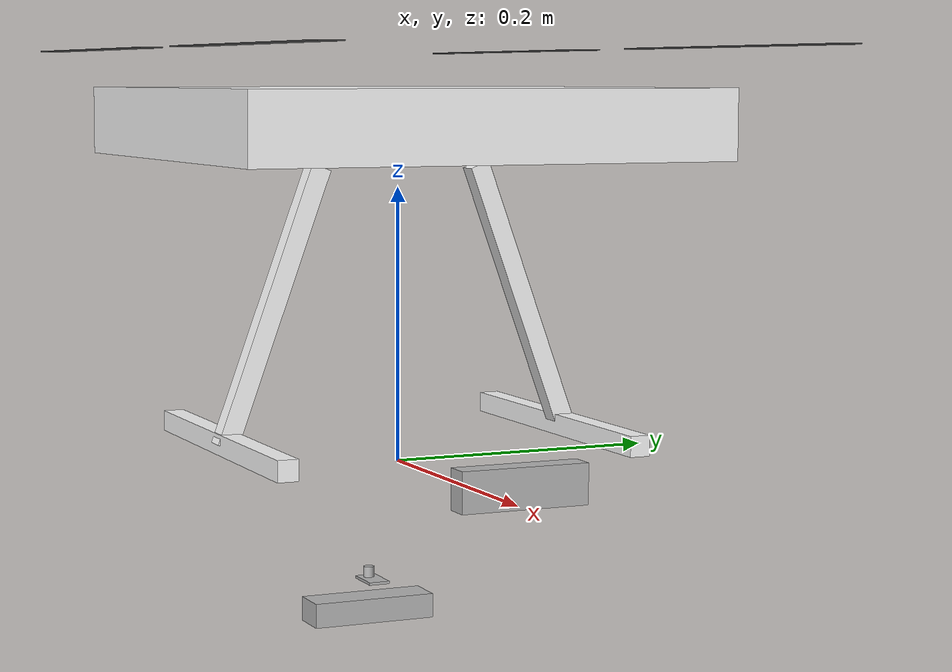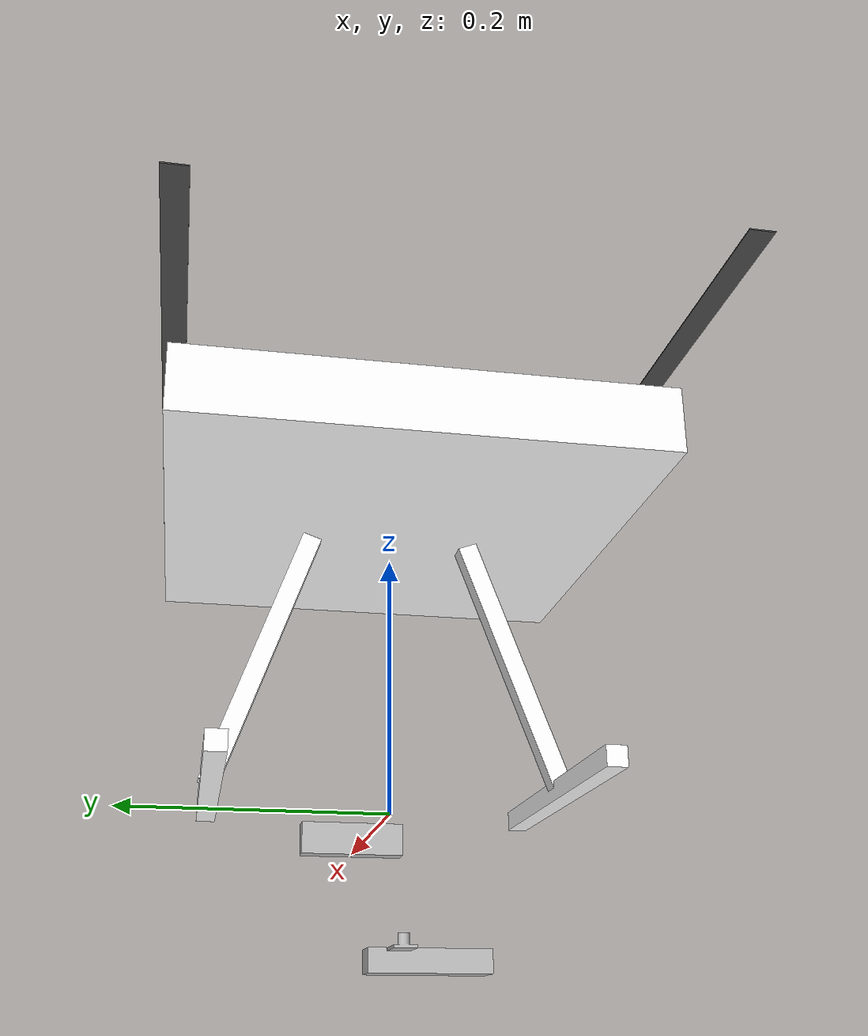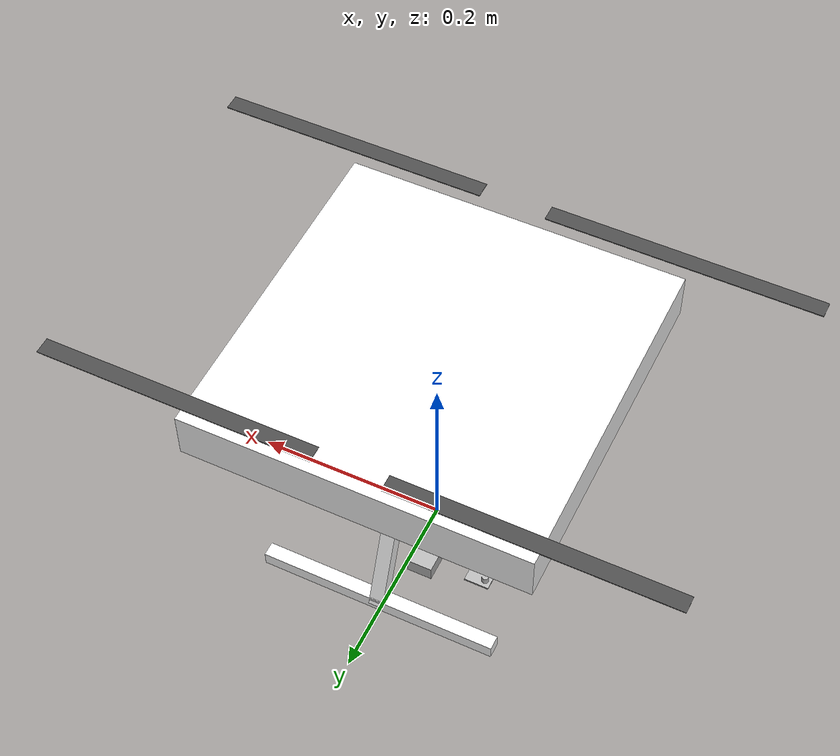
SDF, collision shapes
<?xml version="1.0" encoding="UTF-8"?>

<sdf version="1.9">

  <model name="x500_flow">

    <self_collide>false</self_collide>

    <!-- =====================================================
         FLIGHT-TESTED X500 BASE
         ===================================================== -->

    <include merge="true">
      <uri>model://x500_flow_base</uri>
    </include>

    <!-- =====================================================
         OPTICAL FLOW
         ===================================================== -->

    <include merge="true">
      <uri>model://optical_flow</uri>

      <pose relative_to="base_link">
        0.05 0 -0.1 0 0 0
      </pose>
    </include>

    <joint name="optical_flow_joint" type="fixed">

      <parent>base_link</parent>
      <child>flow_link</child>

      <pose relative_to="base_link">
        0.05 0 -0.1 0 0 0
      </pose>

    </joint>

    <!-- =====================================================
         FRONT REALSENSE D435i
         ===================================================== -->

    <include merge="true">
      <uri>model://Realsense_d435i_front</uri>

      <pose relative_to="base_link">
        0.2 0.03 0 0 0 0
      </pose>
    </include>

    <joint name="realsense_front_joint" type="fixed">

      <parent>base_link</parent>
      <child>realsense_front_link</child>

      <pose relative_to="base_link">
        0.1 0.03 0.3 0 0 0
      </pose>

    </joint>

    <!-- =====================================================
         BOTTOM REALSENSE D435i
         ===================================================== -->

    <include merge="true">
      <uri>model://Realsense_d435i_down</uri>

      <pose relative_to="base_link">
        0 0 -0.1 0 1.57 0
      </pose>
    </include>

    <joint name="realsense_down_joint" type="fixed">

      <parent>base_link</parent>
      <child>realsense_down_link</child>

      <pose relative_to="base_link">
        0 0 -0.1 0 1.57 0
      </pose>

    </joint>

    <!-- =====================================================
         MLX90614 THERMAL SENSOR
         ===================================================== -->

    <include merge="true">
      <uri>model://MLX90614</uri>

      <pose relative_to="base_link">
        -0.05 0 -0.1 0 0 0
      </pose>
    </include>

    <joint name="mlx90614_joint" type="fixed">

      <parent>base_link</parent>
      <child>MLX90614_link</child>

      <pose relative_to="base_link">
        -0.05 0 -0.1 0 1.57 0
      </pose>

    </joint>

  </model>

</sdf>

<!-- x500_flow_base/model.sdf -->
<sdf version='1.9'>
  <model name='x500_flow_base'>
    <include merge='true'>
      <uri>model://x500_base</uri>
    </include>
    <plugin filename="gz-sim-multicopter-motor-model-system"
      name="gz::sim::systems::MulticopterMotorModel">
      <jointName>rotor_0_joint</jointName>
      <linkName>rotor_0</linkName>
      <robotNamespace>x500_flow</robotNamespace>
      <turningDirection>ccw</turningDirection>
      <timeConstantUp>0.0125</timeConstantUp>
      <timeConstantDown>0.025</timeConstantDown>
      <maxRotVelocity>1000.0</maxRotVelocity>
      <motorConstant>8.54858e-06</motorConstant>
      <momentConstant>0.016</momentConstant>
      <commandSubTopic>command/motor_speed</commandSubTopic>
      <actuator_number>0</actuator_number>
      <rotorDragCoefficient>8.06428e-05</rotorDragCoefficient>
      <rollingMomentCoefficient>1e-06</rollingMomentCoefficient>
      <rotorVelocitySlowdownSim>10</rotorVelocitySlowdownSim>
      <motorType>velocity</motorType>
    </plugin>
    <plugin filename="gz-sim-multicopter-motor-model-system"
      name="gz::sim::systems::MulticopterMotorModel">
      <jointName>rotor_1_joint</jointName>
      <linkName>rotor_1</linkName>
      <robotNamespace>x500_flow</robotNamespace>
      <turningDirection>ccw</turningDirection>
      <timeConstantUp>0.0125</timeConstantUp>
      <timeConstantDown>0.025</timeConstantDown>
      <maxRotVelocity>1000.0</maxRotVelocity>
      <motorConstant>8.54858e-06</motorConstant>
      <momentConstant>0.016</momentConstant>
      <commandSubTopic>command/motor_speed</commandSubTopic>
      <actuator_number>1</actuator_number>
      <rotorDragCoefficient>8.06428e-05</rotorDragCoefficient>
      <rollingMomentCoefficient>1e-06</rollingMomentCoefficient>
      <rotorVelocitySlowdownSim>10</rotorVelocitySlowdownSim>
      <motorType>velocity</motorType>
    </plugin>
    <plugin filename="gz-sim-multicopter-motor-model-system"
      name="gz::sim::systems::MulticopterMotorModel">
      <jointName>rotor_2_joint</jointName>
      <linkName>rotor_2</linkName>
      <robotNamespace>x500_flow</robotNamespace>
      <turningDirection>cw</turningDirection>
      <timeConstantUp>0.0125</timeConstantUp>
      <timeConstantDown>0.025</timeConstantDown>
      <maxRotVelocity>1000.0</maxRotVelocity>
      <motorConstant>8.54858e-06</motorConstant>
      <momentConstant>0.016</momentConstant>
      <commandSubTopic>command/motor_speed</commandSubTopic>
      <actuator_number>2</actuator_number>
      <rotorDragCoefficient>8.06428e-05</rotorDragCoefficient>
      <rollingMomentCoefficient>1e-06</rollingMomentCoefficient>
      <rotorVelocitySlowdownSim>10</rotorVelocitySlowdownSim>
      <motorType>velocity</motorType>
    </plugin>
    <plugin filename="gz-sim-multicopter-motor-model-system"
      name="gz::sim::systems::MulticopterMotorModel">
      <jointName>rotor_3_joint</jointName>
      <linkName>rotor_3</linkName>
      <robotNamespace>x500_flow</robotNamespace>
      <turningDirection>cw</turningDirection>
      <timeConstantUp>0.0125</timeConstantUp>
      <timeConstantDown>0.025</timeConstantDown>
      <maxRotVelocity>1000.0</maxRotVelocity>
      <motorConstant>8.54858e-06</motorConstant>
      <momentConstant>0.016</momentConstant>
      <commandSubTopic>command/motor_speed</commandSubTopic>
      <actuator_number>3</actuator_number>
      <rotorDragCoefficient>8.06428e-05</rotorDragCoefficient>
      <rollingMomentCoefficient>1e-06</rollingMomentCoefficient>
      <rotorVelocitySlowdownSim>10</rotorVelocitySlowdownSim>
      <motorType>velocity</motorType>
    </plugin>
  </model>
</sdf>

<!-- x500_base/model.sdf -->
<sdf version='1.9'>
  <model name='x500_base'>
    <pose>0 0 .24 0 0 0</pose>
    <self_collide>false</self_collide>
    <static>false</static>
    <link name="base_link">
      <inertial>
        <mass>2.0</mass>
        <inertia>
          <ixx>0.02166666666666667</ixx>
          <ixy>0</ixy>
          <ixz>0</ixz>
          <iyy>0.02166666666666667</iyy>
          <iyz>0</iyz>
          <izz>0.04000000000000001</izz>
        </inertia>
      </inertial>
      <gravity>true</gravity>
      <velocity_decay/>
      <visual name="base_link_visual">
        <pose>0 0 .025 0 0 3.141592654</pose>
        <geometry>
          <mesh>
            <scale>1 1 1</scale>
            <uri>model://x500_base/meshes/NXP-HGD-CF.dae</uri>
          </mesh>
        </geometry>
      </visual>
      <visual name="5010_motor_base_0">
        <pose>0.174 0.174 .032 0 0 -.45</pose>
        <geometry>
          <mesh>
            <scale>1 1 1</scale>
            <uri>model://x500_base/meshes/5010Base.dae</uri>
          </mesh>
        </geometry>
      </visual>
      <visual name="5010_motor_base_1">
        <pose>-0.174 0.174 .032 0 0 -.45</pose>
        <geometry>
          <mesh>
            <scale>1 1 1</scale>
            <uri>model://x500_base/meshes/5010Base.dae</uri>
          </mesh>
        </geometry>
      </visual>
      <visual name="5010_motor_base_2">
        <pose>0.174 -0.174 .032 0 0 -.45</pose>
        <geometry>
          <mesh>
            <scale>1 1 1</scale>
            <uri>model://x500_base/meshes/5010Base.dae</uri>
          </mesh>
        </geometry>
      </visual>
      <visual name="5010_motor_base_3">
        <pose>-0.174 -0.174 .032 0 0 -.45</pose>
        <geometry>
          <mesh>
            <scale>1 1 1</scale>
            <uri>model://x500_base/meshes/5010Base.dae</uri>
          </mesh>
        </geometry>
      </visual>
      <visual name="NXP_FMUK66_FRONT">
        <pose>0.047 .001 .043 1 0 1.57</pose>
        <cast_shadows>false</cast_shadows>
        <geometry>
          <plane>
            <normal>0 0 1</normal>
            <size>.013 .007</size>
          </plane>
        </geometry>
        <material>
          <diffuse>1.0 1.0 1.0</diffuse>
          <specular>1.0 1.0 1.0</specular>
          <pbr>
            <metal>
              <albedo_map>model://x500_base/materials/textures/nxp.png</albedo_map>
            </metal>
          </pbr>
        </material>
      </visual>
      <visual name="NXP_FMUK66_TOP">
        <pose>-0.023 0 .0515 0 0 -1.57</pose>
        <cast_shadows>false</cast_shadows>
        <geometry>
          <plane>
            <normal>0 0 1</normal>
            <size>.013 .007</size>
          </plane>
        </geometry>
        <material>
          <diffuse>1.0 1.0 1.0</diffuse>
          <specular>1.0 1.0 1.0</specular>
          <pbr>
            <metal>
              <albedo_map>model://x500_base/materials/textures/nxp.png</albedo_map>
            </metal>
          </pbr>
        </material>
      </visual>
      <visual name="RDDRONE_FMUK66_TOP">
        <pose>-.03 0 .0515 0 0 -1.57</pose>
        <cast_shadows>false</cast_shadows>
        <geometry>
          <plane>
            <normal>0 0 1</normal>
            <size>.032 .0034</size>
          </plane>
        </geometry>
        <material>
          <diffuse>1.0 1.0 1.0</diffuse>
          <specular>1.0 1.0 1.0</specular>
          <pbr>
            <metal>
              <albedo_map>model://x500_base/materials/textures/rd.png</albedo_map>
            </metal>
          </pbr>
        </material>
      </visual>
      <collision name="base_link_collision_0">
        <pose>0 0 .007 0 0 0</pose>
        <geometry>
          <box>
            <size>0.35355339059327373 0.35355339059327373 0.05</size>
          </box>
        </geometry>
        <surface>
          <contact>
            <ode>
              <min_depth>0.001</min_depth>
              <max_vel>0</max_vel>
            </ode>
          </contact>
          <friction>
            <ode/>
          </friction>
        </surface>
      </collision>
      <collision name="base_link_collision_1">
        <pose>0 -0.098 -.123 -0.35 0 0</pose>
        <geometry>
          <box>
            <size>0.015 0.015 0.21</size>
          </box>
        </geometry>
        <surface>
          <contact>
            <ode>
              <min_depth>0.001</min_depth>
              <max_vel>0</max_vel>
            </ode>
          </contact>
          <friction>
            <ode/>
          </friction>
        </surface>
      </collision>
      <collision name="base_link_collision_2">
        <pose>0 0.098 -.123 0.35 0 0</pose>
        <geometry>
          <box>
            <size>0.015 0.015 0.21</size>
          </box>
        </geometry>
        <surface>
          <contact>
            <ode>
              <min_depth>0.001</min_depth>
              <max_vel>0</max_vel>
            </ode>
          </contact>
          <friction>
            <ode/>
          </friction>
        </surface>
      </collision>
      <collision name="base_link_collision_3">
        <pose>0 -0.132 -.2195 0 0 0</pose>
        <geometry>
          <box>
            <size>0.25 0.015 0.015</size>
          </box>
        </geometry>
        <surface>
          <contact>
            <ode>
              <min_depth>0.001</min_depth>
              <max_vel>0</max_vel>
            </ode>
          </contact>
          <friction>
            <ode/>
          </friction>
        </surface>
      </collision>
      <collision name="base_link_collision_4">
        <pose>0 0.132 -.2195 0 0 0</pose>
        <geometry>
          <box>
            <size>0.25 0.015 0.015</size>
          </box>
        </geometry>
        <surface>
          <contact>
            <ode>
              <min_depth>0.001</min_depth>
              <max_vel>0</max_vel>
            </ode>
          </contact>
          <friction>
            <ode/>
          </friction>
        </surface>
      </collision>
      <sensor name="air_pressure_sensor" type="air_pressure">
        <always_on>1</always_on>
        <update_rate>50</update_rate>
        <air_pressure>
          <pressure>
            <noise type="gaussian">
              <mean>0</mean>
              <stddev>0.01</stddev>
            </noise>
          </pressure>
        </air_pressure>
      </sensor>
      <sensor name="magnetometer_sensor" type="magnetometer">
        <gz_frame_id>base_link</gz_frame_id>
        <always_on>1</always_on>
        <update_rate>100</update_rate>
        <magnetometer>
          <!-- TODO: update to fix units and coordinate system when we move past Harmonic -->
          <!-- See https://github.com/gazebosim/gz-sim/pull/2460 -->
          <!-- 3mgauss RMS: NOTE: noise is in tesla but sensor reports data in gauss -->
          <!-- Noise modeled after IIS2MDC -->
          <x>
            <noise type="gaussian">
              <stddev>0.0001</stddev>
            </noise>
          </x>
          <y>
            <noise type="gaussian">
              <stddev>0.0001</stddev>
            </noise>
          </y>
          <z>
            <noise type="gaussian">
              <stddev>0.0001</stddev>
            </noise>
          </z>
        </magnetometer>
      </sensor>
      <sensor name="imu_sensor" type="imu">
        <gz_frame_id>base_link</gz_frame_id>
        <always_on>1</always_on>
        <update_rate>250</update_rate>
        <imu>
          <angular_velocity>
            <x>
              <noise type="gaussian">
                <mean>0</mean>
                <stddev>0.00018665</stddev>
                <dynamic_bias_stddev>3.8785e-05</dynamic_bias_stddev>
                <dynamic_bias_correlation_time>1000</dynamic_bias_correlation_time>
              </noise>
            </x>
            <y>
              <noise type="gaussian">
                <mean>0</mean>
                <stddev>0.00018665</stddev>
                <dynamic_bias_stddev>3.8785e-05</dynamic_bias_stddev>
                <dynamic_bias_correlation_time>1000</dynamic_bias_correlation_time>
              </noise>
            </y>
            <z>
              <noise type="gaussian">
                <mean>0</mean>
                <stddev>0.00018665</stddev>
                <dynamic_bias_stddev>3.8785e-05</dynamic_bias_stddev>
                <dynamic_bias_correlation_time>1000</dynamic_bias_correlation_time>
              </noise>
            </z>
          </angular_velocity>
          <linear_acceleration>
            <x>
              <noise type="gaussian">
                <mean>0</mean>
                <stddev>0.00186</stddev>
                <dynamic_bias_stddev>0.006</dynamic_bias_stddev>
                <dynamic_bias_correlation_time>300</dynamic_bias_correlation_time>
              </noise>
            </x>
            <y>
              <noise type="gaussian">
                <mean>0</mean>
                <stddev>0.00186</stddev>
                <dynamic_bias_stddev>0.006</dynamic_bias_stddev>
                <dynamic_bias_correlation_time>300</dynamic_bias_correlation_time>
              </noise>
            </y>
            <z>
              <noise type="gaussian">
                <mean>0</mean>
                <stddev>0.00186</stddev>
                <dynamic_bias_stddev>0.006</dynamic_bias_stddev>
                <dynamic_bias_correlation_time>300</dynamic_bias_correlation_time>
              </noise>
            </z>
          </linear_acceleration>
        </imu>
      </sensor>
      <sensor name="navsat_sensor" type="navsat">
        <always_on>1</always_on>
        <update_rate>30</update_rate>
      </sensor>
    </link>
    <link name="rotor_0">
      <gravity>true</gravity>
      <self_collide>false</self_collide>
      <velocity_decay/>
      <pose>0.174 -0.174 0.06 0 0 0</pose>
      <inertial>
          <mass>0.016076923076923075</mass>
          <inertia>
            <ixx>3.8464910483993325e-07</ixx>
            <iyy>2.6115851691700804e-05</iyy>
            <izz>2.649858234714004e-05</izz>
          </inertia>
        </inertial>
      <visual name="rotor_0_visual">
        <pose>-0.022 -0.14638461538461536 -0.016 0 0 0</pose>
        <geometry>
          <mesh>
            <scale>0.8461538461538461 0.8461538461538461 0.8461538461538461</scale>
            <uri>model://x500_base/meshes/1345_prop_ccw.stl</uri>
          </mesh>
        </geometry>
        <material>
          <script>
            <name>Gazebo/DarkGrey</name>
            <uri>file://media/materials/scripts/gazebo.material</uri>
          </script>
        </material>
      </visual>
      <visual name="rotor_0_visual_motor_bell">
        <pose>0 0 -.032 0 0 0</pose>
        <geometry>
          <mesh>
            <scale>1 1 1</scale>
            <uri>model://x500_base/meshes/5010Bell.dae</uri>
          </mesh>
        </geometry>
      </visual>
      <collision name="rotor_0_collision">
        <pose>0 0 0 0 0 0 </pose>
        <geometry>
          <box>
            <size>0.2792307692307692 0.016923076923076923 0.0008461538461538462</size>
          </box>
        </geometry>
        <surface>
          <contact>
            <ode>
              <min_depth>0.001</min_depth>
              <max_vel>0</max_vel>
            </ode>
          </contact>
          <friction>
            <ode/>
          </friction>
        </surface>
      </collision>
    </link>
    <joint name="rotor_0_joint" type="revolute">
      <parent>base_link</parent>
      <child>rotor_0</child>
      <axis>
        <xyz>0 0 1</xyz>
        <limit>
          <lower>-1e+16</lower>
          <upper>1e+16</upper>
        </limit>
        <dynamics>
          <spring_reference>0</spring_reference>
          <spring_stiffness>0</spring_stiffness>
        </dynamics>
      </axis>
    </joint>
    <link name="rotor_1">
      <gravity>true</gravity>
      <self_collide>false</self_collide>
      <velocity_decay/>
      <pose>-0.174 0.174 0.06 0 0 0</pose>
      <inertial>
          <mass>0.016076923076923075</mass>
          <inertia>
            <ixx>3.8464910483993325e-07</ixx>
            <iyy>2.6115851691700804e-05</iyy>
            <izz>2.649858234714004e-05</izz>
          </inertia>
        </inertial>
      <visual name="rotor_1_visual">
        <pose>-0.022 -0.14638461538461536 -0.016 0 0 0</pose>
        <geometry>
          <mesh>
            <scale>0.8461538461538461 0.8461538461538461 0.8461538461538461</scale>
            <uri>model://x500_base/meshes/1345_prop_ccw.stl</uri>
          </mesh>
        </geometry>
        <material>
          <script>
            <name>Gazebo/DarkGrey</name>
            <uri>file://media/materials/scripts/gazebo.material</uri>
          </script>
        </material>
      </visual>
      <visual name="rotor_1_visual_motor_top">
        <pose>0 0 -.032 0 0 0</pose>
        <geometry>
          <mesh>
            <scale>1 1 1</scale>
            <uri>model://x500_base/meshes/5010Bell.dae</uri>
          </mesh>
        </geometry>
      </visual>
      <collision name="rotor_1_collision">
        <pose>0 0 0 0 0 0 </pose>
        <geometry>
          <box>
            <size>0.2792307692307692 0.016923076923076923 0.0008461538461538462</size>
          </box>
        </geometry>
        <surface>
          <contact>
            <ode>
              <min_depth>0.001</min_depth>
              <max_vel>0</max_vel>
            </ode>
          </contact>
          <friction>
            <ode/>
          </friction>
        </surface>
      </collision>
    </link>
    <joint name="rotor_1_joint" type="revolute">
      <parent>base_link</parent>
      <child>rotor_1</child>
      <axis>
        <xyz>0 0 1</xyz>
        <limit>
          <lower>-1e+16</lower>
          <upper>1e+16</upper>
        </limit>
        <dynamics>
          <spring_reference>0</spring_reference>
          <spring_stiffness>0</spring_stiffness>
        </dynamics>
      </axis>
    </joint>
    <link name="rotor_2">
      <gravity>true</gravity>
      <self_collide>false</self_collide>
      <velocity_decay/>
      <pose>0.174 0.174 0.06 0 0 0</pose>
      <inertial>
          <mass>0.016076923076923075</mass>
          <inertia>
            <ixx>3.8464910483993325e-07</ixx>
            <iyy>2.6115851691700804e-05</iyy>
            <izz>2.649858234714004e-05</izz>
          </inertia>
        </inertial>
      <visual name="rotor_2_visual">
        <pose>-0.022 -0.14638461538461536 -0.016 0 0 0</pose>
        <geometry>
          <mesh>
            <scale>0.8461538461538461 0.8461538461538461 0.8461538461538461</scale>
            <uri>model://x500_base/meshes/1345_prop_cw.stl</uri>
          </mesh>
        </geometry>
        <material>
          <script>
            <name>Gazebo/DarkGrey</name>
            <uri>file://media/materials/scripts/gazebo.material</uri>
          </script>
        </material>
      </visual>
      <visual name="rotor_2_visual_motor_top">
        <pose>0 0 -.032 0 0 0</pose>
        <geometry>
          <mesh>
            <scale>1 1 1</scale>
            <uri>model://x500_base/meshes/5010Bell.dae</uri>
          </mesh>
        </geometry>
      </visual>
      <collision name="rotor_2_collision">
        <pose>0 0 0 0 0 0 </pose>
        <geometry>
          <box>
            <size>0.2792307692307692 0.016923076923076923 0.0008461538461538462</size>
          </box>
        </geometry>
        <surface>
          <contact>
            <ode>
              <min_depth>0.001</min_depth>
              <max_vel>0</max_vel>
            </ode>
          </contact>
          <friction>
            <ode/>
          </friction>
        </surface>
      </collision>
    </link>
    <joint name="rotor_2_joint" type="revolute">
      <parent>base_link</parent>
      <child>rotor_2</child>
      <axis>
        <xyz>0 0 1</xyz>
        <limit>
          <lower>-1e+16</lower>
          <upper>1e+16</upper>
        </limit>
        <dynamics>
          <spring_reference>0</spring_reference>
          <spring_stiffness>0</spring_stiffness>
        </dynamics>
      </axis>
    </joint>
    <link name="rotor_3">
      <gravity>true</gravity>
      <self_collide>false</self_collide>
      <velocity_decay/>
      <pose>-0.174 -0.174 0.06 0 0 0</pose>
      <inertial>
          <mass>0.016076923076923075</mass>
          <inertia>
            <ixx>3.8464910483993325e-07</ixx>
            <iyy>2.6115851691700804e-05</iyy>
            <izz>2.649858234714004e-05</izz>
          </inertia>
        </inertial>
      <visual name="rotor_3_visual">
        <pose>-0.022 -0.14638461538461536 -0.016 0 0 0</pose>
        <geometry>
          <mesh>
            <scale>0.8461538461538461 0.8461538461538461 0.8461538461538461</scale>
            <uri>model://x500_base/meshes/1345_prop_cw.stl</uri>
          </mesh>
        </geometry>
        <material>
          <script>
            <name>Gazebo/DarkGrey</name>
            <uri>file://media/materials/scripts/gazebo.material</uri>
          </script>
        </material>
      </visual>
      <visual name="rotor_3_visual_motor_top">
        <pose>0 0 -.032 0 0 0</pose>
        <geometry>
          <mesh>
            <scale>1 1 1</scale>
            <uri>model://x500_base/meshes/5010Bell.dae</uri>
          </mesh>
        </geometry>
      </visual>
      <collision name="rotor_3_collision">
        <pose>0 0 0 0 0 0 </pose>
        <geometry>
          <box>
            <size>0.2792307692307692 0.016923076923076923 0.0008461538461538462</size>
          </box>
        </geometry>
        <surface>
          <contact>
            <ode>
              <min_depth>0.001</min_depth>
              <max_vel>0</max_vel>
            </ode>
          </contact>
          <friction>
            <ode/>
          </friction>
        </surface>
      </collision>
    </link>
    <joint name="rotor_3_joint" type="revolute">
      <parent>base_link</parent>
      <child>rotor_3</child>
      <axis>
        <xyz>0 0 1</xyz>
        <limit>
          <lower>-1e+16</lower>
          <upper>1e+16</upper>
        </limit>
        <dynamics>
          <spring_reference>0</spring_reference>
          <spring_stiffness>0</spring_stiffness>
        </dynamics>
      </axis>
    </joint>
  </model>
</sdf>

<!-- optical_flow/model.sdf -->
<sdf version='1.9'>
  <model name='optical_flow'>
    <pose>0 0 0 0 0 0</pose>
    <self_collide>false</self_collide>
    <static>false</static>
    <link name="flow_link">
      <inertial>
        <pose>0 0 -0.005 0 0 0</pose>
        <mass>0.050</mass>
        <inertia>
          <ixx>0.00004</ixx>
          <ixy>0</ixy>
          <ixz>0</ixz>
          <iyy>0.00004</iyy>
          <iyz>0</iyz>
          <izz>0.00004</izz>
        </inertia>
      </inertial>
      <visual name="optical_flow/visual/housing">
        <geometry>
          <box>
            <size>0.034 0.034 0.01</size>
          </box>
        </geometry>
        <material>
          <ambient>0.1 0.1 0.1 1</ambient>
          <diffuse>0.1 0.1 0.1 1</diffuse>
          <specular>0.01 0.01 0.01 1</specular>
        </material>
      </visual>
      <visual name="optical_flow/visual/lens">
        <pose>0 0 -0.005 0 0 0</pose>
        <geometry>
          <cylinder>
            <radius>0.006</radius>
            <length>0.005</length>
          </cylinder>
        </geometry>
      </visual>
      <visual name="optical_flow/visual/lens_glass">
        <pose>0 0 -0.0075 0 0 0</pose>
        <geometry>
          <sphere>
            <radius>0.0059</radius>
          </sphere>
        </geometry>
        <material>
          <ambient>.4 .4 .5 .95</ambient>
          <diffuse>.4 .4 .5 .95</diffuse>
          <specular>1 1 1 1</specular>
          <emissive>0 0 0 1</emissive>
        </material>
      </visual>
      <sensor name="flow_camera" type="camera">
        <pose>0 0 0 0 1.5707 0</pose>
        <camera>
          <horizontal_fov>0.733038</horizontal_fov>
          <image>
            <width>100</width>
            <height>100</height>
          </image>
          <clip>
            <near>0.1</near>
            <far>30</far>
          </clip>
        </camera>
        <always_on>1</always_on>
        <update_rate>50</update_rate>
        <visualize>true</visualize>
      </sensor>
      <sensor name="optical_flow" type="custom" gz:type="optical_flow">
        <always_on>1</always_on>
        <update_rate>50</update_rate>
        <visualize>true</visualize>
      </sensor>
    </link>
  </model>
</sdf>

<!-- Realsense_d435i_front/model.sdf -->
<sdf version="1.9">
  <model name="Realsense_d435i_front">
    <pose>0 0 0 0 0 0</pose>
    <self_collide>false</self_collide>
    <static>false</static>
    <link name="realsense_front_link">
      <inertial>
        <pose>0.00358 -0.03 .014 0 0 0</pose>
        <mass>0.061</mass>
        <inertia>
          <ixx>0.0000460804</ixx>
          <ixy>0</ixy>
          <ixz>0</ixz>
          <iyy>0.0000055421</iyy>
          <iyz>0</iyz>
          <izz>0.0000436519</izz>
        </inertia>
      </inertial>
      <visual name="Realsense_d435i_front/visual">
        <pose>0 -0.025 0 0 0 1.5708</pose>
        <geometry>
          <mesh>
            <scale>0.1 0.1 0.1</scale>
            <uri>model://Realsense_d435i_front/meshes/Realsense_d435i.dae</uri>
          </mesh>
        </geometry>
      </visual>
      <collision name="Realsense_d435i_front/collision">
        <pose>0.00358 -0.03 .014 0 0 0</pose>
        <geometry>
          <box>
            <size>0.0175 0.091 0.028</size>
          </box>
        </geometry>
      </collision>
      <sensor name="IMX214" type="camera">
        <gz_frame_id>camera_link</gz_frame_id>
        <pose>0.01233 -0.03 .01878 0 0 0</pose>
        <camera>
          <horizontal_fov>1.51844</horizontal_fov>
          <vertical_fov>1.01</vertical_fov>
          <image>
            <width>1280</width>
            <height>720</height>
          </image>
          <clip>
            <near>0.1</near>
            <far>10</far>
          </clip>
        </camera>
        <always_on>1</always_on>
        <update_rate>30</update_rate>
        <visualize>true</visualize>
        <topic>camera/front/rgb</topic>
      </sensor>
      <sensor name="StereoOV7251" type="depth_camera">
        <gz_frame_id>camera_link</gz_frame_id>
        <pose>0.01233 -0.03 .01878 0 0 0</pose>
        <camera>
          <horizontal_fov>1.51844</horizontal_fov>
          <vertical_fov>1.01</vertical_fov>
          <image>
            <width>1280</width>
            <height>720</height>
            <format>R_FLOAT32</format>
          </image>
          <clip>
            <near>0.3</near>
            <far>3</far>
          </clip>
        </camera>
        <always_on>1</always_on>
        <update_rate>30</update_rate>
        <visualize>true</visualize>
        <topic>camera/front/depth</topic>
      </sensor>
      <gravity>true</gravity>
      <velocity_decay />
    </link>
  </model>
</sdf>

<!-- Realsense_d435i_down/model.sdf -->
<sdf version='1.9'>
  <model name='Realsense_d435i_down'>
    <pose>0 0 0 0 0 0</pose>
    <self_collide>false</self_collide>
    <static>false</static>
    <link name="realsense_down_link">
      <inertial>
        <pose>0.00358 -0.03 .014 0 0 0</pose>
        <mass>0.061</mass>
        <inertia>
          <ixx>0.0000460804</ixx>
          <ixy>0</ixy>
          <ixz>0</ixz>
          <iyy>0.0000055421</iyy>
          <iyz>0</iyz>
          <izz>0.0000436519</izz>
        </inertia>
      </inertial>
      <visual name="Realsense_d435i_down/visual">
        <pose>0 0 0 0 0 1.5708</pose>
        <geometry>
          <box>
            <size>0.0175 0.091 0.028</size>
          </box>
        </geometry>
      </visual>
      <collision name="Realsense_d435i_down/collision">
        <pose>0.00358 -0.03 .014 0 0 0</pose>
        <geometry>
          <box>
            <size>0.0175 0.091 0.028</size>
          </box>
        </geometry>
      </collision>
      <sensor name="IMX214" type="camera">
        <gz_frame_id>camera_link</gz_frame_id>
        <pose>0.01233 -0.03 .01878 0 0 0</pose>
        <camera>
          <horizontal_fov>1.51844</horizontal_fov>
          <image>
            <width>1280</width>
            <height>720</height>
          </image>
          <clip>
            <near>0.1</near>
            <far>10</far>
          </clip>
        </camera>
        <always_on>1</always_on>
        <update_rate>30</update_rate>
        <visualize>true</visualize>
        <topic>camera/bottom/rgb</topic>
      </sensor>
      <sensor name="StereoOV7251" type="depth_camera">
        <gz_frame_id>camera_link</gz_frame_id>
        <pose>0.01233 -0.03 .01878 0 0 0</pose>
        <camera>
          <horizontal_fov>1.51844</horizontal_fov>
          <image>
            <width>1280</width>
            <height>720</height>
            <format>R_FLOAT32</format>
          </image>
          <clip>
            <near>0.3</near>
            <far>3</far>
          </clip>
        </camera>
        <always_on>1</always_on>
        <update_rate>30</update_rate>
        <visualize>true</visualize>
        <topic>camera/bottom/depth</topic>
      </sensor>
      <gravity>true</gravity>
      <velocity_decay />
    </link>
  </model>
</sdf>

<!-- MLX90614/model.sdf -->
<sdf version='1.9'>

  <model name='MLX90614'>

    <link name="MLX90614_link">
    <inertial>
        <pose>0.00358 -0.03 .014 0 0 0</pose>
        <mass>0.061</mass>
        <inertia>
          <ixx>0.0000460804</ixx>
          <ixy>0</ixy>
          <ixz>0</ixz>
          <iyy>0.0000055421</iyy>
          <iyz>0</iyz>
          <izz>0.0000436519</izz>
        </inertia>
      </inertial>
    <collision name="collision">
      <geometry>
        <mesh>
            <uri>model://MLX90614/meshes/MLX90614.stl</uri>
          </mesh>
      </geometry>
    </collision>
    <visual name="visual">
      <geometry>
        <mesh>
            <uri>model://MLX90614/meshes/MLX90614.stl</uri>
          </mesh>
      </geometry>
    </visual>
    <sensor name="camera_thermal" type="thermal_camera">
      <pose>0 0 0 0 1.5708 0</pose>
      <always_on>1</always_on>
      <update_rate>10</update_rate>
      <visualize>true</visualize>

      <topic>/MLX90614/thermal_image</topic>

      <thermal_camera>
        <horizontal_fov>0.611</horizontal_fov> <!-- 35° in Radiant -->
        <image>
          <width>320</width>
          <height>240</height>
          <format>L16</format>
        </image>
        <clip>
          <near>0.1</near>
          <far>20</far>
        </clip>

        <min_temp>203.15</min_temp>
        <max_temp>653.15</max_temp>
        <resolution>0.01</resolution>     <!-- 0.01 K Auflösung -->
      </thermal_camera>
    </sensor>

  </link>
</model>
</sdf>
